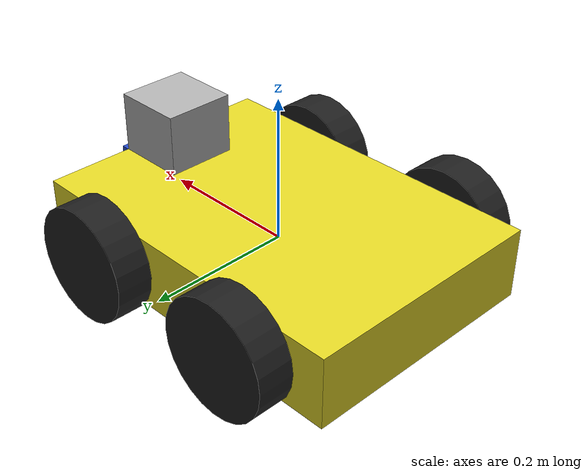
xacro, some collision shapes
<?xml version="1.0" encoding="UTF-8"?>

<!-- Create robot -->
<robot name="my_robot" xmlns:xacro="http://www.ros.org/wiki/xacro">

  <xacro:include filename="$(find my_robot)/urdf/my_robot.gazebo" />

  <!-- Create footprint -->
  <link name="robot_footprint"/>

  <!-- Join footprint to chassis -->
  <joint name="robot_footprint_joint" type="fixed">
    <parent link="robot_footprint"/>
    <child link="chassis"/>
    <origin xyz="0 0 0" rpy="0 0 0"/>
  </joint>

  <!-- Create chassis -->
  <link name="chassis">
    <visual>
      <geometry>
        <box size="0.5 0.35 0.1"/>
      </geometry>
    </visual>

    <collision>
      <geometry>
        <box size="0.5 0.3 0.1"/>
      </geometry>
    </collision>

    <inertial>
      <mass value="15.0"/>
      <inertia
          ixx="0.1" ixy="0" ixz="0"
          iyy="0.1" iyz="0"
          izz="0.1"
      />
    </inertial>
  </link>

  <!-- Create fl wheel -->
  <link name="wheel_fl">
    <visual>
      <origin xyz="0 0 0" rpy=" 0 1.5707 1.5707"/>
      <geometry>
        <cylinder radius="0.08" length="0.05"/>
      </geometry>
    </visual>
    <collision>
      <origin xyz="0 0 0" rpy=" 0 1.5707 1.5707"/>
      <geometry>
        <cylinder radius="0.08" length="0.05"/>
      </geometry>
    </collision>
    <inertial>
      <origin xyz="0 0 0" rpy=" 0 1.5707 1.5707"/>
      <mass value="5.0"/>
      <inertia
          ixx="0.1" ixy="0" ixz="0"
          iyy="0.1" iyz="0"
          izz="0.1"
      />
    </inertial>
  </link>

  <joint type="continuous" name="wheel_fl_hinge">
    <origin xyz="0.125 0.2 0" rpy="0 0 0"/>
    <child link="wheel_fl"/>
    <parent link="chassis"/>
    <axis xyz="0 1 0" rpy="0 0 0"/>
    <limit effort="10000" velocity="1000"/>
    <dynamics damping="1.0" friction="1.0"/>
  </joint>

  <!-- Create fr wheel -->
  <link name="wheel_fr">
      <visual>
        <origin xyz="0 0 0" rpy=" 0 1.5707 1.5707"/>
        <geometry>
          <cylinder radius="0.08" length="0.05"/>
        </geometry>
      </visual>
      <collision>
        <origin xyz="0 0 0" rpy=" 0 1.5707 1.5707"/>
        <geometry>
          <cylinder radius="0.08" length="0.05"/>
        </geometry>
      </collision>
      <inertial>
        <origin xyz="0 0 0" rpy=" 0 1.5707 1.5707"/>
        <mass value="5.0"/>
        <inertia
            ixx="0.1" ixy="0" ixz="0"
            iyy="0.1" iyz="0"
            izz="0.1"
        />
      </inertial>
    </link>

    <joint type="continuous" name="wheel_fr_hinge">
      <origin xyz="0.125 -0.2 0" rpy="0 0 0"/>
      <child link="wheel_fr"/>
      <parent link="chassis"/>
      <axis xyz="0 1 0" rpy="0 0 0"/>
      <limit effort="10000" velocity="1000"/>
      <dynamics damping="1.0" friction="1.0"/>
    </joint>

    <!-- Create rl wheel -->
  <link name="wheel_rl">
      <visual>
        <origin xyz="0 0 0" rpy=" 0 1.5707 1.5707"/>
        <geometry>
          <cylinder radius="0.08" length="0.05"/>
        </geometry>
      </visual>
      <collision>
        <origin xyz="0 0 0" rpy=" 0 1.5707 1.5707"/>
        <geometry>
          <cylinder radius="0.08" length="0.05"/>
        </geometry>
      </collision>
      <inertial>
        <origin xyz="0 0 0" rpy=" 0 1.5707 1.5707"/>
        <mass value="5.0"/>
        <inertia
            ixx="0.1" ixy="0" ixz="0"
            iyy="0.1" iyz="0"
            izz="0.1"
        />
      </inertial>
    </link>

    <joint type="continuous" name="wheel_rl_hinge">
      <origin xyz="-0.125 0.2 0" rpy="0 0 0"/>
      <child link="wheel_rl"/>
      <parent link="chassis"/>
      <axis xyz="0 1 0" rpy="0 0 0"/>
      <limit effort="10000" velocity="1000"/>
      <dynamics damping="1.0" friction="1.0"/>
    </joint>

    <!-- Create rr wheel -->
  <link name="wheel_rr">
      <visual>
        <origin xyz="0 0 0" rpy=" 0 1.5707 1.5707"/>
        <geometry>
          <cylinder radius="0.08" length="0.05"/>
        </geometry>
      </visual>
      <collision>
        <origin xyz="0 0 0" rpy=" 0 1.5707 1.5707"/>
        <geometry>
          <cylinder radius="0.08" length="0.05"/>
        </geometry>
      </collision>
      <inertial>
        <origin xyz="0 0 0" rpy=" 0 1.5707 1.5707"/>
        <mass value="5.0"/>
        <inertia
            ixx="0.1" ixy="0" ixz="0"
            iyy="0.1" iyz="0"
            izz="0.1"
        />
      </inertial>
    </link>

    <joint type="continuous" name="wheel_rr_hinge">
      <origin xyz="-0.125 -0.2 0" rpy="0 0 0"/>
      <child link="wheel_rr"/>
      <parent link="chassis"/>
      <axis xyz="0 1 0" rpy="0 0 0"/>
      <limit effort="10000" velocity="1000"/>
      <dynamics damping="1.0" friction="1.0"/>
    </joint>

    <!-- Add camera -->

    <link name="camera">
      <visual>
        <geometry>
          <box size="0.05 0.05 0.05"/>
        </geometry>
      </visual>
      <collision>
        <geometry>
          <box size="0.05 0.05 0.05"/>
        </geometry>
      </collision>
      <inertial>
        <mass value="0.1"/>
        <inertia
          ixx="1e-6" ixy="0" ixz="0"
          iyy="1e-6" iyz="0"
          izz="1e-6"
        />
      </inertial>
    </link>

    <joint name="camera_joint" type="fixed">
      <origin xyz="0.275 0 0" rpy="0 0 0"/>
      <parent link="chassis"/>
      <child link="camera"/>
    </joint>

    <!-- Add lidar -->

    <link name = "hokuyo">
      <visual>
        <geometry>
          <mesh filename="package://my_robot/meshes/hokuyo.dae"/>
        </geometry>
      </visual>

      <collision>
        <geometry>
          <box size="0.1 0.1 0.1" />
        </geometry>
      </collision>

      <intertial>
        <mass value="1e-5"/>
        <inertia
          ixx="1e-6" ixy="0" ixz="0"
          iyy="1e-6" iyz="0"
          izz="1e-6"
        />
      </intertial>
    </link>

    <joint name="hokuyo_joint" type="fixed">
      <origin xyz="0.2 0 0.085" rpy="0 0 0"/>
      <parent link="chassis"/>
      <child link="hokuyo"/>
    </joint>

  <!-- Add colors -->
  <gazebo reference="wheel_fl">
    <material>Gazebo/Black</material>
  </gazebo>
  <gazebo reference="wheel_fr">
    <material>Gazebo/Black</material>
  </gazebo>
  <gazebo reference="wheel_rl">
    <material>Gazebo/Black</material>
  </gazebo>
  <gazebo reference="wheel_rr">
    <material>Gazebo/Black</material>
  </gazebo>
  <gazebo reference="chassis">
    <material>Gazebo/Yellow</material>
  </gazebo>
  <gazebo reference="camera">
    <material>Gazebo/Blue</material>
  </gazebo>

</robot>
